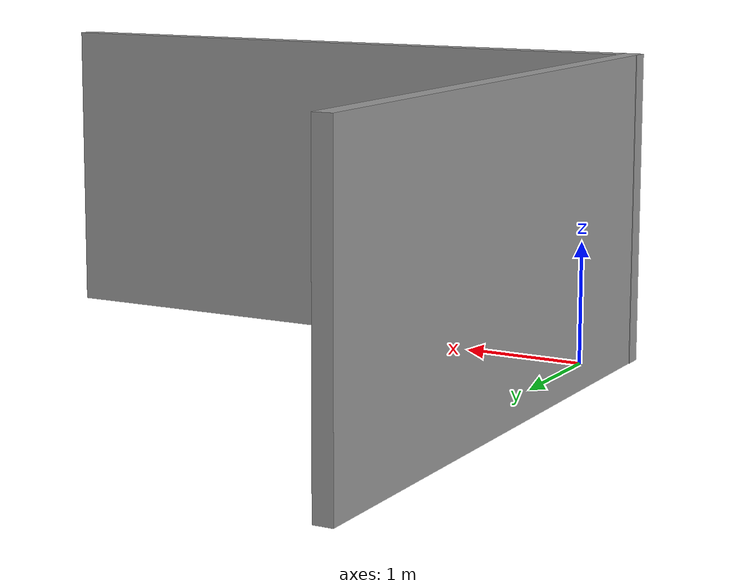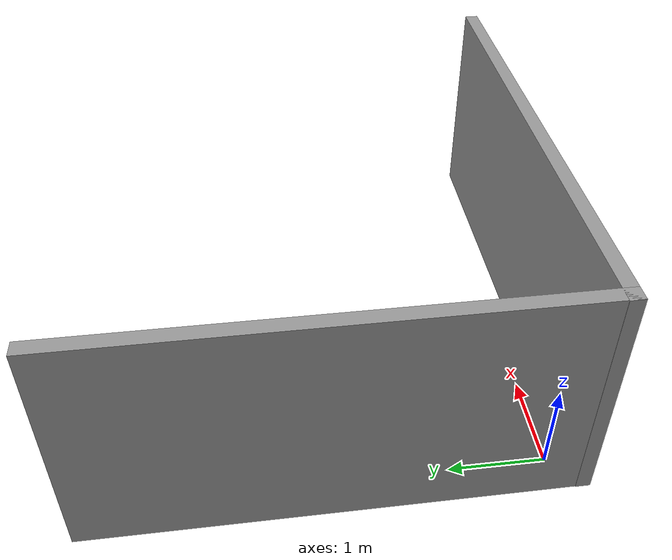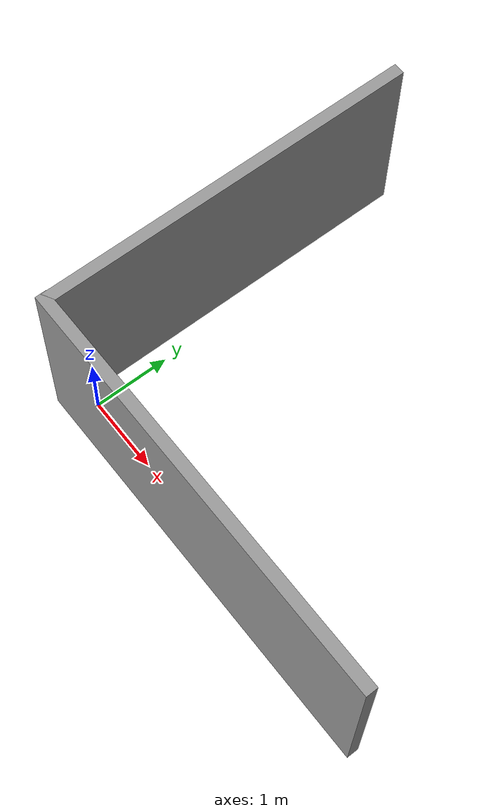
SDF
<?xml version='1.0'?>
<sdf version='1.6'>
  <model name='muvu_world'>
    <pose frame=''>2.36633 2.14818 0 0 -0 0</pose>
    <link name='Wall_3'>
      <collision name='Wall_3_Collision'>
        <geometry>
          <box>
            <size>5.43296 0.15 2.5</size>
          </box>
        </geometry>
        <pose frame=''>0 0 1.25 0 -0 0</pose>
      </collision>
      <visual name='Wall_3_Visual'>
        <pose frame=''>0 0 1.25 0 -0 0</pose>
        <geometry>
          <box>
            <size>5.43296 0.15 2.5</size>
          </box>
        </geometry>
        <material>
          <script>
            <uri>file://media/materials/scripts/gazebo.material</uri>
            <name>Gazebo/Grey</name>
          </script>
          <ambient>1 1 1 1</ambient>
        </material>
        <meta>
          <layer>0</layer>
        </meta>
      </visual>
      <pose frame=''>0 -2.425 0 0 -0 0</pose>
    </link>
    <link name='Wall_6'>
      <collision name='Wall_6_Collision'>
        <geometry>
          <box>
            <size>5 0.15 2.5</size>
          </box>
        </geometry>
        <pose frame=''>0 0 1.25 0 -0 0</pose>
      </collision>
      <visual name='Wall_6_Visual'>
        <pose frame=''>0 0 1.25 0 -0 0</pose>
        <geometry>
          <box>
            <size>5 0.15 2.5</size>
          </box>
        </geometry>
        <material>
          <script>
            <uri>file://media/materials/scripts/gazebo.material</uri>
            <name>Gazebo/Grey</name>
          </script>
          <ambient>1 1 1 1</ambient>
        </material>
        <meta>
          <layer>0</layer>
        </meta>
      </visual>
      <pose frame=''>-2.63576 0 0 0 -0 1.5708</pose>
    </link>
    <static>1</static>
  </model>
</sdf>
